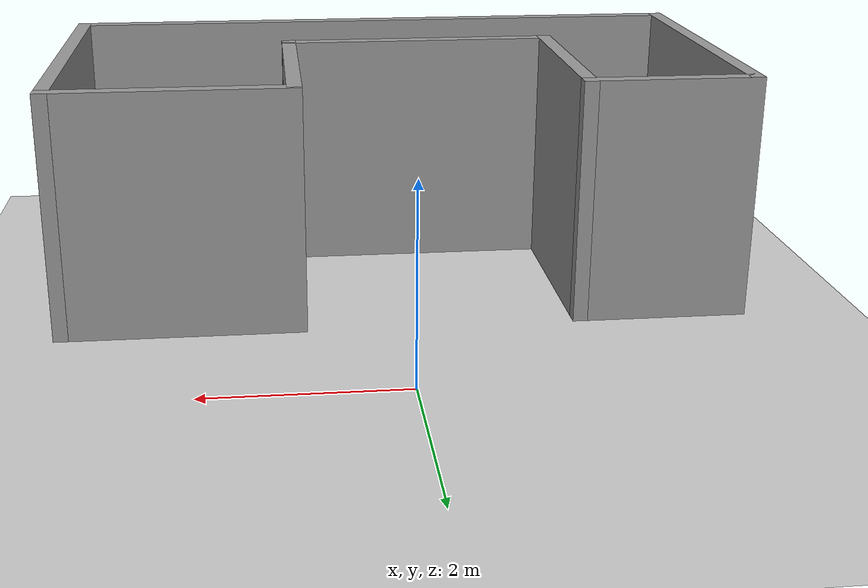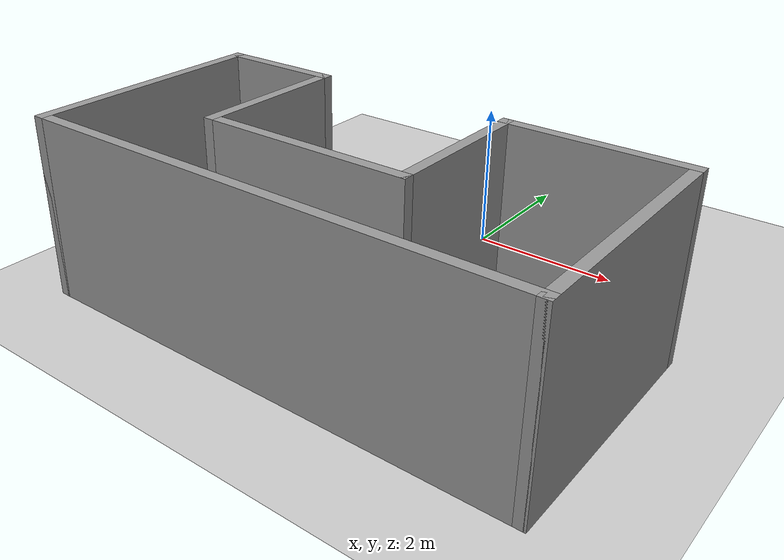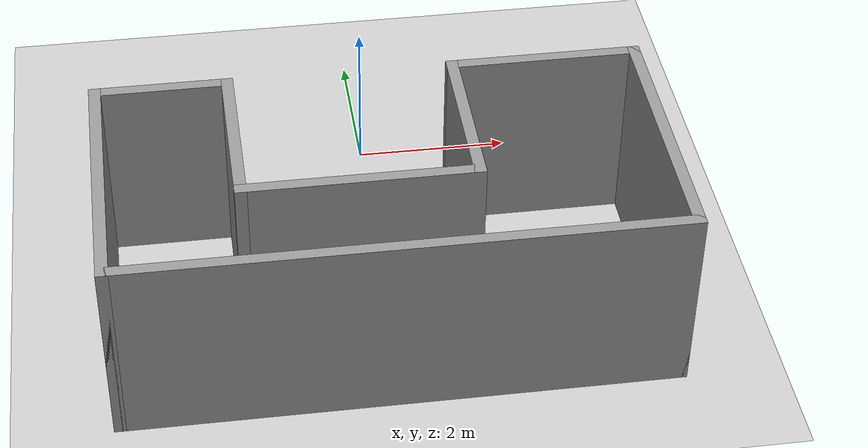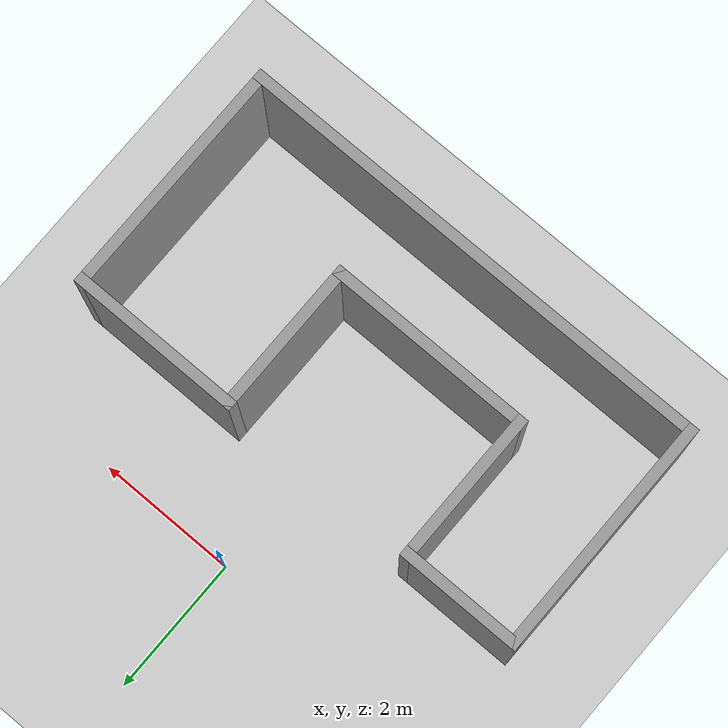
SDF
<?xml version="1.0" ?>

<sdf version="1.5">
  <world name="default">
    <!-- A global light source -->
    <include>
      <uri>model://sun</uri>
    </include>

    <!-- A ground plane -->
    <include>
      <uri>model://ground_plane</uri>
    </include>

    <!-- Our custom model -->
    <include>
      <uri>model://u_shape</uri>
    </include>
  </world>
</sdf>

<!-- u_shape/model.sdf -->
<sdf version='1.6'>
  <model name='u_shape'>
    <pose frame=''>-0.065 -3.105 0 0 -0 0</pose>
    <link name='Wall_0'>
      <collision name='Wall_0_Collision'>
        <geometry>
          <box>
            <size>3.5 0.15 2.5</size>
          </box>
        </geometry>
        <pose frame=''>0 0 1.25 0 -0 0</pose>
      </collision>
      <visual name='Wall_0_Visual'>
        <pose frame=''>0 0 1.25 0 -0 0</pose>
        <geometry>
          <box>
            <size>3.5 0.15 2.5</size>
          </box>
        </geometry>
        <material>
          <script>
            <uri>file://media/materials/scripts/gazebo.material</uri>
            <name>Gazebo/Grey</name>
          </script>
          <ambient>1 1 1 1</ambient>
        </material>
        <meta>
          <layer>0</layer>
        </meta>
      </visual>
      <pose frame=''>-3.425 0 0 0 -0 -1.5708</pose>
    </link>
    <link name='Wall_1'>
      <collision name='Wall_1_Collision'>
        <geometry>
          <box>
            <size>7 0.15 2.5</size>
          </box>
        </geometry>
        <pose frame=''>0 0 1.25 0 -0 0</pose>
      </collision>
      <visual name='Wall_1_Visual'>
        <pose frame=''>0 0 1.25 0 -0 0</pose>
        <geometry>
          <box>
            <size>7 0.15 2.5</size>
          </box>
        </geometry>
        <material>
          <script>
            <uri>file://media/materials/scripts/gazebo.material</uri>
            <name>Gazebo/Grey</name>
          </script>
          <ambient>1 1 1 1</ambient>
        </material>
        <meta>
          <layer>0</layer>
        </meta>
      </visual>
      <pose frame=''>0 -1.675 0 0 -0 0</pose>
    </link>
    <link name='Wall_2'>
      <collision name='Wall_2_Collision'>
        <geometry>
          <box>
            <size>3.5 0.15 2.5</size>
          </box>
        </geometry>
        <pose frame=''>0 0 1.25 0 -0 0</pose>
      </collision>
      <visual name='Wall_2_Visual'>
        <pose frame=''>0 0 1.25 0 -0 0</pose>
        <geometry>
          <box>
            <size>3.5 0.15 2.5</size>
          </box>
        </geometry>
        <material>
          <script>
            <uri>file://media/materials/scripts/gazebo.material</uri>
            <name>Gazebo/Grey</name>
          </script>
          <ambient>1 1 1 1</ambient>
        </material>
        <meta>
          <layer>0</layer>
        </meta>
      </visual>
      <pose frame=''>3.425 0 0 0 -0 1.5708</pose>
    </link>
    <link name='Wall_3'>
      <collision name='Wall_3_Collision'>
        <geometry>
          <box>
            <size>2.5 0.15 2.5</size>
          </box>
        </geometry>
        <pose frame=''>0 0 1.25 0 -0 0</pose>
      </collision>
      <visual name='Wall_3_Visual'>
        <pose frame=''>0 0 1.25 0 -0 0</pose>
        <geometry>
          <box>
            <size>2.5 0.15 2.5</size>
          </box>
        </geometry>
        <material>
          <script>
            <uri>file://media/materials/scripts/gazebo.material</uri>
            <name>Gazebo/Grey</name>
          </script>
          <ambient>1 1 1 1</ambient>
        </material>
        <meta>
          <layer>0</layer>
        </meta>
      </visual>
      <pose frame=''>2.25 1.675 0 0 -0 3.14159</pose>
    </link>
    <link name='Wall_4'>
      <collision name='Wall_4_Collision'>
        <geometry>
          <box>
            <size>2.25 0.15 2.5</size>
          </box>
        </geometry>
        <pose frame=''>0 0 1.25 0 -0 0</pose>
      </collision>
      <visual name='Wall_4_Visual'>
        <pose frame=''>0 0 1.25 0 -0 0</pose>
        <geometry>
          <box>
            <size>2.25 0.15 2.5</size>
          </box>
        </geometry>
        <material>
          <script>
            <uri>file://media/materials/scripts/gazebo.material</uri>
            <name>Gazebo/Grey</name>
          </script>
          <ambient>1 1 1 1</ambient>
        </material>
        <meta>
          <layer>0</layer>
        </meta>
      </visual>
      <pose frame=''>1.075 0.625 0 0 -0 -1.5708</pose>
    </link>
    <link name='Wall_5'>
      <collision name='Wall_5_Collision'>
        <geometry>
          <box>
            <size>3 0.15 2.5</size>
          </box>
        </geometry>
        <pose frame=''>0 0 1.25 0 -0 0</pose>
      </collision>
      <visual name='Wall_5_Visual'>
        <pose frame=''>0 0 1.25 0 -0 0</pose>
        <geometry>
          <box>
            <size>3 0.15 2.5</size>
          </box>
        </geometry>
        <material>
          <script>
            <uri>file://media/materials/scripts/gazebo.material</uri>
            <name>Gazebo/Grey</name>
          </script>
          <ambient>1 1 1 1</ambient>
        </material>
        <meta>
          <layer>0</layer>
        </meta>
      </visual>
      <pose frame=''>-0.35 -0.425 0 0 -0 3.14159</pose>
    </link>
    <link name='Wall_6'>
      <collision name='Wall_6_Collision'>
        <geometry>
          <box>
            <size>2.25 0.15 2.5</size>
          </box>
        </geometry>
        <pose frame=''>0 0 1.25 0 -0 0</pose>
      </collision>
      <visual name='Wall_6_Visual'>
        <pose frame=''>0 0 1.25 0 -0 0</pose>
        <geometry>
          <box>
            <size>2.25 0.15 2.5</size>
          </box>
        </geometry>
        <material>
          <script>
            <uri>file://media/materials/scripts/gazebo.material</uri>
            <name>Gazebo/Grey</name>
          </script>
          <ambient>1 1 1 1</ambient>
        </material>
        <meta>
          <layer>0</layer>
        </meta>
      </visual>
      <pose frame=''>-1.775 0.625 0 0 -0 1.5708</pose>
    </link>
    <link name='Wall_7'>
      <collision name='Wall_7_Collision'>
        <geometry>
          <box>
            <size>1.8 0.15 2.5</size>
          </box>
        </geometry>
        <pose frame=''>0 0 1.25 0 -0 0</pose>
      </collision>
      <visual name='Wall_7_Visual'>
        <pose frame=''>0 0 1.25 0 -0 0</pose>
        <geometry>
          <box>
            <size>1.8 0.15 2.5</size>
          </box>
        </geometry>
        <material>
          <script>
            <uri>file://media/materials/scripts/gazebo.material</uri>
            <name>Gazebo/Grey</name>
          </script>
          <ambient>1 1 1 1</ambient>
        </material>
        <meta>
          <layer>0</layer>
        </meta>
      </visual>
      <pose frame=''>-2.6 1.675 0 0 -0 3.14159</pose>
    </link>
    <static>1</static>
  </model>
</sdf>
